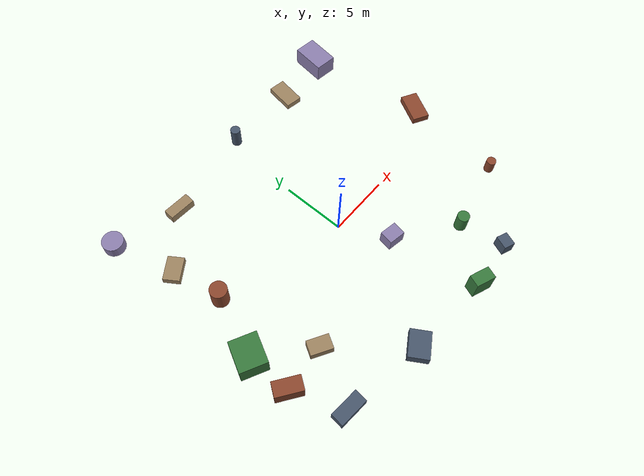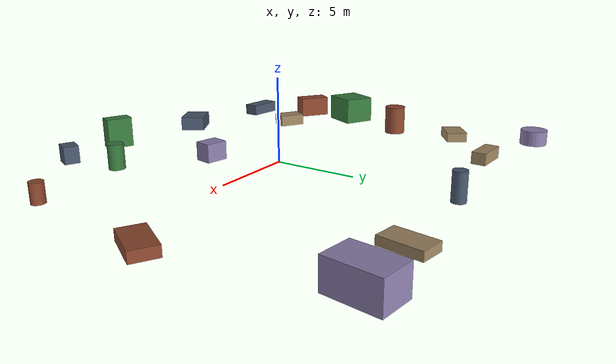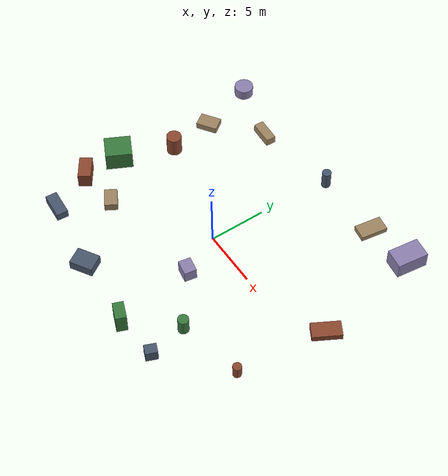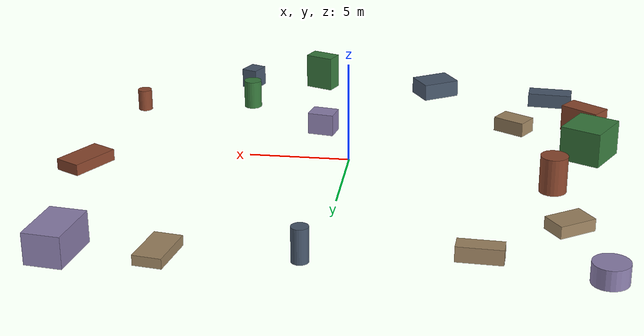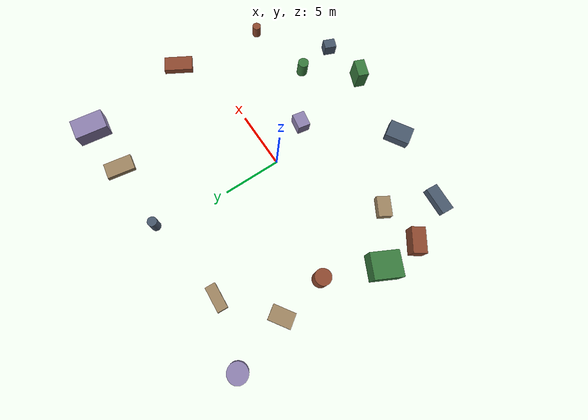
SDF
<sdf version="1.10">
 <world name="robotx_task1_uav_view">
  <gravity>0 0 -9.81</gravity>
  <physics name="physics" type="ode">
   <max_step_size>0.002</max_step_size>
   <real_time_factor>1.0</real_time_factor>
  </physics>
  <scene>
   <ambient>0.18 0.22 0.18 1.0</ambient>
   <background>0.35 0.55 0.40 1.0</background>
   <shadows>true</shadows>
   <grid>false</grid>
  </scene>
  <light name="sun" type="directional">
   <pose>0 0 300 0 0 0</pose>
   <diffuse>0.55 0.75 0.60 1.0</diffuse>
   <specular>0.28 0.45 0.32 1.0</specular>
   <direction>0.20 -0.06 -1.0</direction>
   <attenuation>
    <range>2500</range>
    <constant>0.85</constant>
    <linear>0.001</linear>
    <quadratic>0.00005</quadratic>
   </attenuation>
  </light>
  <plugin filename="gz-sim-physics-system" name="gz::sim::systems::Physics"/>
  <plugin filename="gz-sim-user-commands-system" name="gz::sim::systems::UserCommands"/>
  <plugin filename="gz-sim-scene-broadcaster-system" name="gz::sim::systems::SceneBroadcaster"/>
  <plugin filename="gz-sim-sensors-system" name="gz::sim::systems::Sensors">
   <render_engine>ogre2</render_engine>
  </plugin>
  <model name="scene_clutter_box_000">
   <static>true</static>
   <pose>-10.655 6.698 0.316 0 0 2.170214</pose>
   <link name="link">
    <visual name="v">
     <geometry><box><size>1.263 1.858 0.592</size></box></geometry>
     <material><ambient>0.45 0.38 0.32 1.0</ambient><diffuse>0.62 0.52 0.38 1.0</diffuse></material>
    </visual>
   </link>
  </model>
  <model name="scene_clutter_box_001">
   <static>true</static>
   <pose>6.748 -10.299 0.545 0 0 1.186332</pose>
   <link name="link">
    <visual name="v">
     <geometry><box><size>1.036 0.865 1.050</size></box></geometry>
     <material><ambient>0.18 0.22 0.28 1.0</ambient><diffuse>0.28 0.34 0.42 1.0</diffuse></material>
    </visual>
   </link>
  </model>
  <model name="scene_clutter_cyl_002">
   <static>true</static>
   <pose>-9.987 2.632 0.950 0 0 0.612880</pose>
   <link name="link">
    <visual name="v">
     <geometry><cylinder><radius>0.658</radius><length>1.800</length></cylinder></geometry>
     <material><ambient>0.35 0.16 0.12 1.0</ambient><diffuse>0.55 0.28 0.18 1.0</diffuse></material>
    </visual>
   </link>
  </model>
  <model name="scene_clutter_box_003">
   <static>true</static>
   <pose>2.808 -10.690 0.948 0 0 -1.944050</pose>
   <link name="link">
    <visual name="v">
     <geometry><box><size>0.925 1.540 1.857</size></box></geometry>
     <material><ambient>0.12 0.30 0.14 1.0</ambient><diffuse>0.22 0.48 0.24 1.0</diffuse></material>
    </visual>
   </link>
  </model>
  <model name="scene_clutter_box_004">
   <static>true</static>
   <pose>1.793 -3.662 0.579 0 0 2.966634</pose>
   <link name="link">
    <visual name="v">
     <geometry><box><size>1.345 1.068 1.118</size></box></geometry>
     <material><ambient>0.40 0.35 0.50 1.0</ambient><diffuse>0.55 0.50 0.68 1.0</diffuse></material>
    </visual>
   </link>
  </model>
  <model name="scene_clutter_box_005">
   <static>true</static>
   <pose>-8.094 -5.007 0.388 0 0 1.041586</pose>
   <link name="link">
    <visual name="v">
     <geometry><box><size>1.116 1.684 0.735</size></box></geometry>
     <material><ambient>0.45 0.38 0.32 1.0</ambient><diffuse>0.62 0.52 0.38 1.0</diffuse></material>
    </visual>
   </link>
  </model>
  <model name="scene_clutter_box_006">
   <static>true</static>
   <pose>-3.662 -10.153 0.460 0 0 2.124305</pose>
   <link name="link">
    <visual name="v">
     <geometry><box><size>1.550 2.030 0.881</size></box></geometry>
     <material><ambient>0.18 0.22 0.28 1.0</ambient><diffuse>0.28 0.34 0.42 1.0</diffuse></material>
    </visual>
   </link>
  </model>
  <model name="scene_clutter_cyl_007">
   <static>true</static>
   <pose>11.906 -5.678 0.612 0 0 -0.133138</pose>
   <link name="link">
    <visual name="v">
     <geometry><cylinder><radius>0.371</radius><length>1.124</length></cylinder></geometry>
     <material><ambient>0.35 0.16 0.12 1.0</ambient><diffuse>0.55 0.28 0.18 1.0</diffuse></material>
    </visual>
   </link>
  </model>
  <model name="scene_clutter_cyl_008">
   <static>true</static>
   <pose>6.148 -6.886 0.791 0 0 2.450161</pose>
   <link name="link">
    <visual name="v">
     <geometry><cylinder><radius>0.466</radius><length>1.482</length></cylinder></geometry>
     <material><ambient>0.12 0.30 0.14 1.0</ambient><diffuse>0.22 0.48 0.24 1.0</diffuse></material>
    </visual>
   </link>
  </model>
  <model name="scene_clutter_box_009">
   <static>true</static>
   <pose>11.089 11.785 0.768 0 0 1.441591</pose>
   <link name="link">
    <visual name="v">
     <geometry><box><size>2.728 1.759 1.495</size></box></geometry>
     <material><ambient>0.40 0.35 0.50 1.0</ambient><diffuse>0.55 0.50 0.68 1.0</diffuse></material>
    </visual>
   </link>
  </model>
  <model name="scene_clutter_box_010">
   <static>true</static>
   <pose>6.772 11.424 0.261 0 0 1.412879</pose>
   <link name="link">
    <visual name="v">
     <geometry><box><size>2.354 1.338 0.482</size></box></geometry>
     <material><ambient>0.45 0.38 0.32 1.0</ambient><diffuse>0.62 0.52 0.38 1.0</diffuse></material>
    </visual>
   </link>
  </model>
  <model name="scene_clutter_box_011">
   <static>true</static>
   <pose>-10.053 -9.166 0.393 0 0 3.060672</pose>
   <link name="link">
    <visual name="v">
     <geometry><box><size>2.295 1.012 0.745</size></box></geometry>
     <material><ambient>0.18 0.22 0.28 1.0</ambient><diffuse>0.28 0.34 0.42 1.0</diffuse></material>
    </visual>
   </link>
  </model>
  <model name="scene_clutter_box_012">
   <static>true</static>
   <pose>-11.728 -5.349 0.697 0 0 2.531377</pose>
   <link name="link">
    <visual name="v">
     <geometry><box><size>2.075 1.109 1.354</size></box></geometry>
     <material><ambient>0.35 0.16 0.12 1.0</ambient><diffuse>0.55 0.28 0.18 1.0</diffuse></material>
    </visual>
   </link>
  </model>
  <model name="scene_clutter_box_013">
   <static>true</static>
   <pose>-11.842 -1.947 0.891 0 0 1.105365</pose>
   <link name="link">
    <visual name="v">
     <geometry><box><size>2.330 2.080 1.742</size></box></geometry>
     <material><ambient>0.12 0.30 0.14 1.0</ambient><diffuse>0.22 0.48 0.24 1.0</diffuse></material>
    </visual>
   </link>
  </model>
  <model name="scene_clutter_cyl_014">
   <static>true</static>
   <pose>-12.139 11.531 0.516 0 0 0.471527</pose>
   <link name="link">
    <visual name="v">
     <geometry><cylinder><radius>0.822</radius><length>0.932</length></cylinder></geometry>
     <material><ambient>0.40 0.35 0.50 1.0</ambient><diffuse>0.55 0.50 0.68 1.0</diffuse></material>
    </visual>
   </link>
  </model>
  <model name="scene_clutter_box_015">
   <static>true</static>
   <pose>-6.813 10.106 0.383 0 0 1.515578</pose>
   <link name="link">
    <visual name="v">
     <geometry><box><size>0.862 2.098 0.726</size></box></geometry>
     <material><ambient>0.45 0.38 0.32 1.0</ambient><diffuse>0.62 0.52 0.38 1.0</diffuse></material>
    </visual>
   </link>
  </model>
  <model name="scene_clutter_cyl_016">
   <static>true</static>
   <pose>0.685 11.286 0.870 0 0 -2.258159</pose>
   <link name="link">
    <visual name="v">
     <geometry><cylinder><radius>0.393</radius><length>1.640</length></cylinder></geometry>
     <material><ambient>0.18 0.22 0.28 1.0</ambient><diffuse>0.28 0.34 0.42 1.0</diffuse></material>
    </visual>
   </link>
  </model>
  <model name="scene_clutter_box_017">
   <static>true</static>
   <pose>12.780 2.280 0.304 0 0 -0.508793</pose>
   <link name="link">
    <visual name="v">
     <geometry><box><size>1.365 2.498 0.568</size></box></geometry>
     <material><ambient>0.35 0.16 0.12 1.0</ambient><diffuse>0.55 0.28 0.18 1.0</diffuse></material>
    </visual>
   </link>
  </model>
  <model name="uav_dataset_camera">
   <static>false</static>
   <pose>0 0 26 0 0 0</pose>
   <plugin filename="librobotx_overhead_motion_plugin.dylib" name="robotx::OverheadMotionPlugin">
    <radius_x_m>9.70078</radius_x_m>
    <radius_y_m>11.17601</radius_y_m>
    <angular_speed_rad_s>0.050014</angular_speed_rad_s>
    <phase_rad>2.913602</phase_rad>
    <z_wobble_m>0.09384</z_wobble_m>
    <z_wobble_hz>0.06912</z_wobble_hz>
    <z_wobble_phase_rad>3.905498</z_wobble_phase_rad>
   </plugin>
   <link name="camera_link">
    <gravity>false</gravity>
    <sensor name="top_down_rgb" type="camera">
     <always_on>true</always_on>
     <update_rate>20</update_rate>
     <pose>0 0 0 0 1.57079632679 0</pose>
     <camera>
      <horizontal_fov>1.05</horizontal_fov>
      <image><width>1920</width><height>1080</height><format>R8G8B8</format></image>
      <clip><near>0.2</near><far>600</far></clip>
     </camera>
     <topic>/robotx/uav/camera/image_raw</topic>
     <visualize>true</visualize>
    </sensor>
   </link>
  </model>
 </world>
</sdf>
